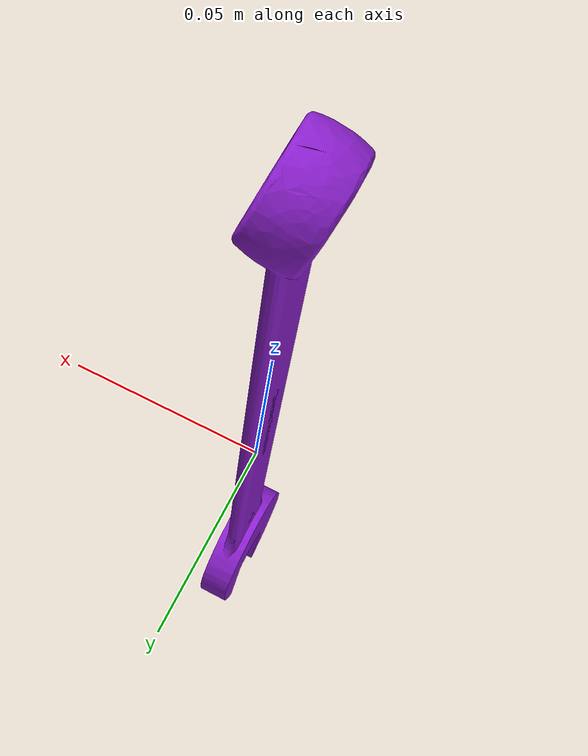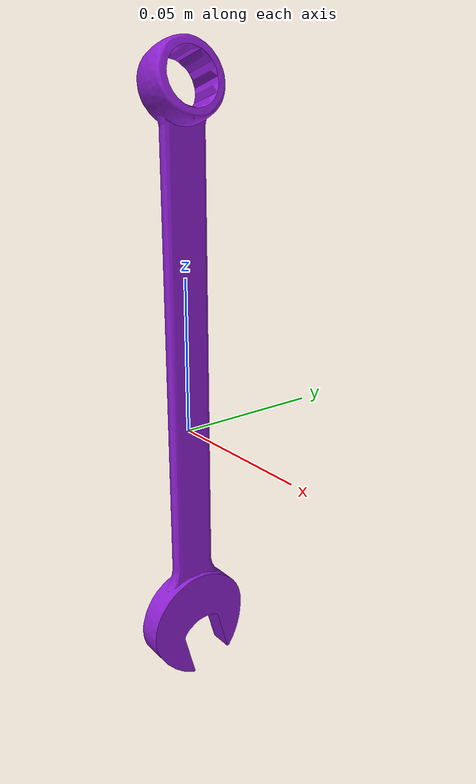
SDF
<?xml version="1.0"?>
<sdf version="1.7">
  <model name="combination_wrench_15mm_bright">
    <pose>0 0 0 0 0 0</pose>
    <static>false</static>
    <link name="link">
      <!-- link frame = tool CoM; Z = long axis (+ toward tool end), X = forward, Y = Z x X -->
      <inertial>
        <pose>0 0 0 0 0 0</pose>
        <mass>0.139143</mass>
        <inertia>
          <ixx>6.391932e-04</ixx>
          <ixy>-1.429018e-20</ixy>
          <ixz>-2.054861e-22</ixz>
          <iyy>6.322595e-04</iyy>
          <iyz>-1.473471e-21</iyz>
          <izz>8.211590e-06</izz>
        </inertia>
      </inertial>
      <collision name="collision">
        <geometry>
          <mesh>
            <uri>model://combination_wrench_15mm/meshes/combination_wrench_15mm.dae</uri>
          </mesh>
        </geometry>
      </collision>
      <visual name="visual">
        <geometry>
          <mesh>
            <uri>model://combination_wrench_15mm/meshes/combination_wrench_15mm.dae</uri>
          </mesh>
        </geometry>
        <material>
          <ambient>0.250 0.055 0.369 1.0</ambient>
          <diffuse>0.555 0.123 0.820 1.0</diffuse>
          <specular>0.85 0.85 0.85 1.0</specular>
          <emissive>0 0 0 1.0</emissive>
        </material>
      </visual>
    </link>
  </model>
</sdf>
